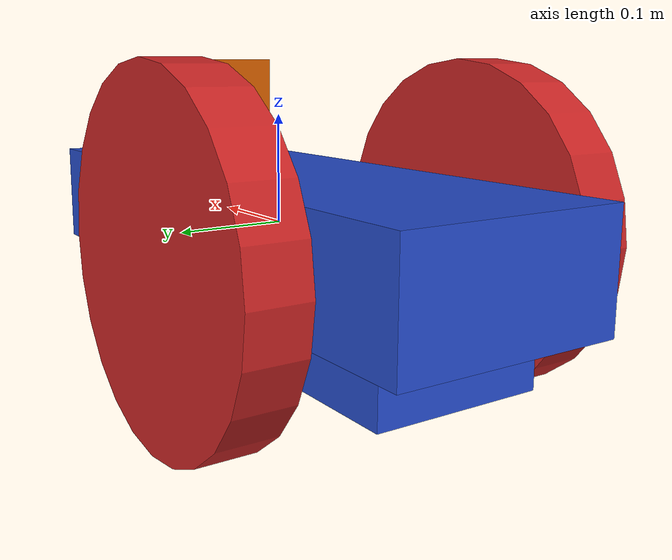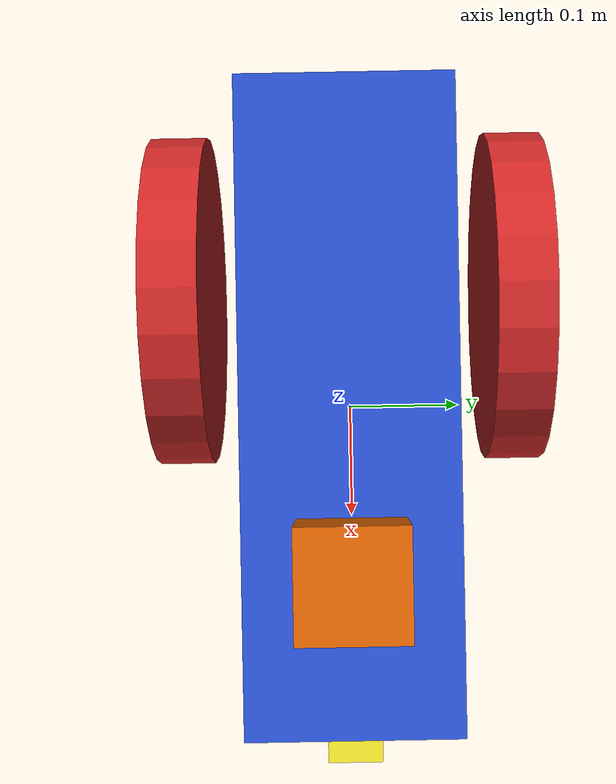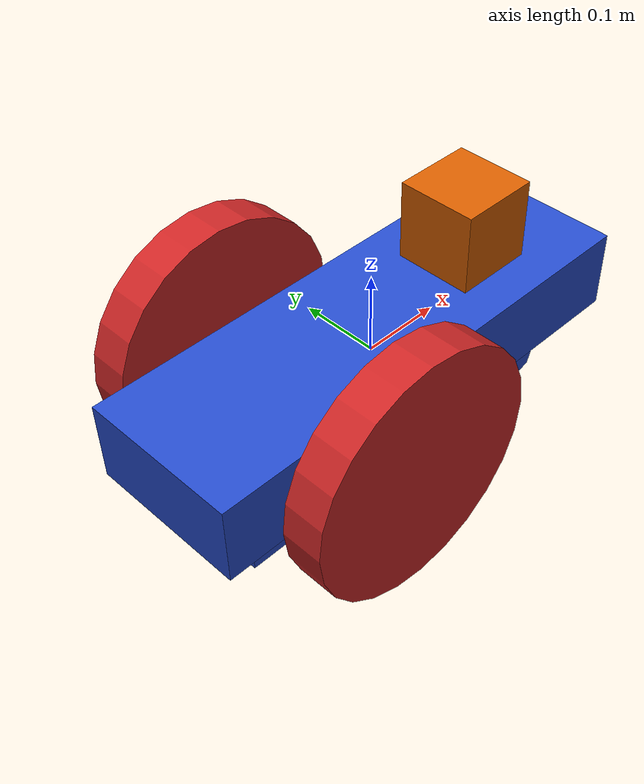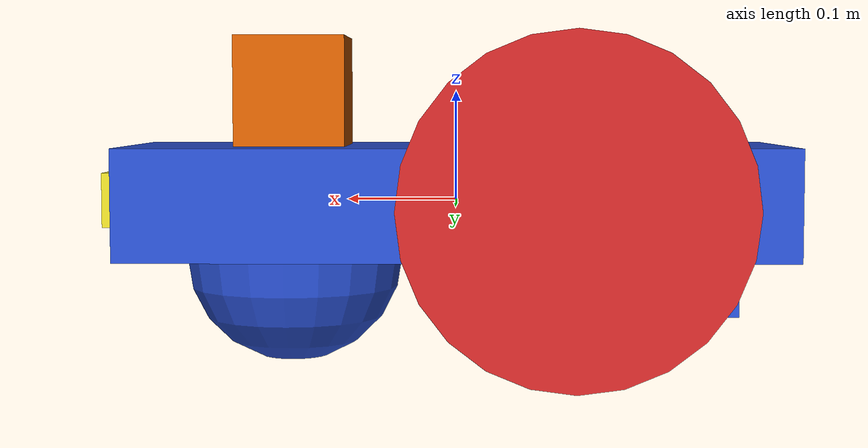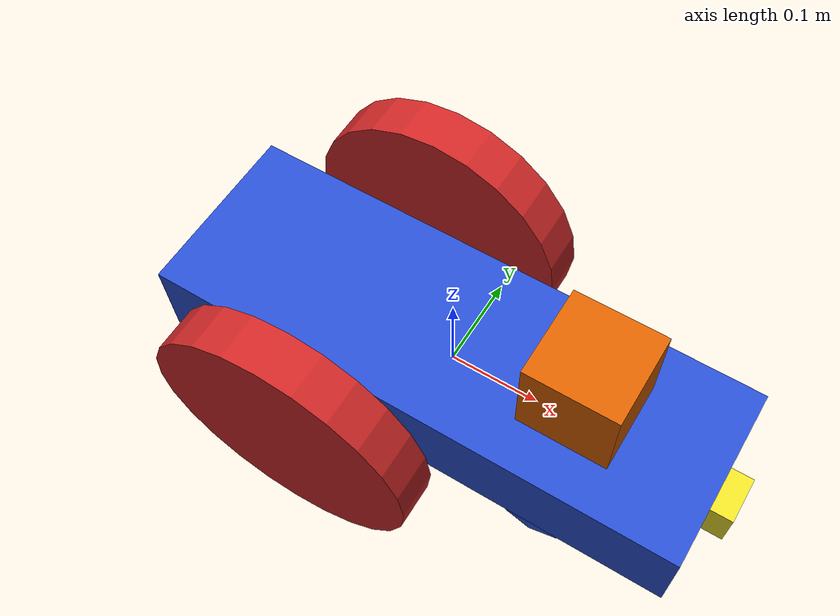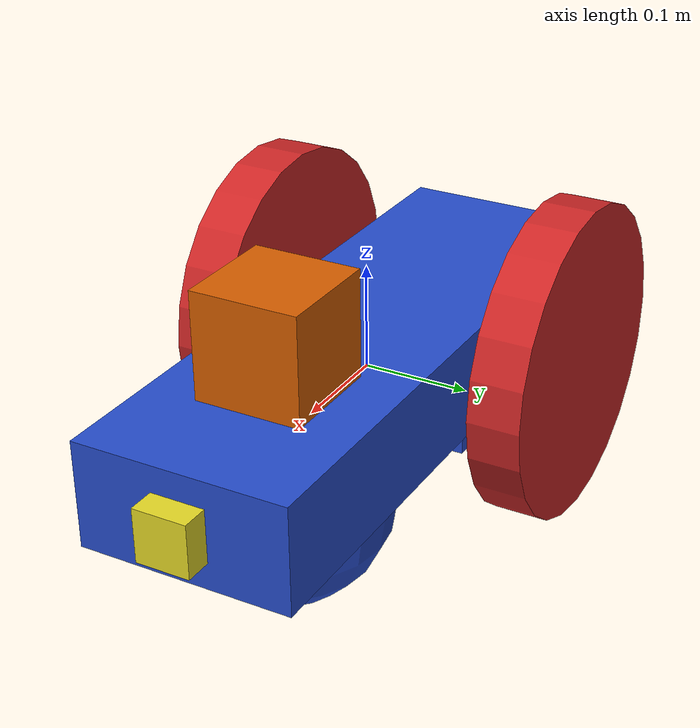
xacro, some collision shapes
<?xml version='1.0'?>

<robot name="my_robot" xmlns:xacro="http://www.ros.org/wiki/xacro">
  <xacro:include filename="$(find my_robot)/urdf/my_robot.gazebo" />
  <link name="robot_footprint"></link>

  <joint name="robot_footprint_joint" type="fixed">
    <origin xyz="0 0 0" rpy="0 0 0" />
    <parent link="robot_footprint"/>
    <child link="chassis" />
  </joint>

  <link name='chassis'>
    <pose>0 0 0.1 0 0 0</pose>

    <inertial>
      <mass value="15.0"/>
      <origin xyz="0.0 0 0" rpy=" 0 0 0"/>
      <inertia
          ixx="0.1" ixy="0" ixz="0"
          iyy="0.1" iyz="0"
          izz="0.1"
      />
    </inertial>

    <collision name='collision'>
      <origin xyz="0 0 0" rpy=" 0 0 0"/>
      <geometry>
        <box size=".6 .2 .1"/>
      </geometry>
    </collision>

    <visual name='chassis_visual'>
      <origin xyz="0 0 0" rpy=" 0 0 0"/>
      <geometry>
        <box size=".6 .2 .1"/>
      </geometry>
    </visual>
   <collision name='back_caster_collision'>
      <origin xyz="-0.15 0 -0.05" rpy=" 0 0 0"/>
      <geometry>
        <box size=".2 .15 .1"/>
      </geometry>
    </collision>

    <visual name='back_caster_visual'>
      <origin xyz="-0.15 0 -0.05" rpy=" 0 0 0"/>
      <geometry>
        <box size=".2 .15 .1"/>
      </geometry>
    </visual>

    <collision name='front_caster_collision'>
      <origin xyz="0.15 0 -0.05" rpy=" 0 0 0"/>
      <geometry>
        <sphere radius="0.1"/>
      </geometry>
    </collision>

    <visual name='front_caster_visual'>
      <origin xyz="0.15 0 -0.05" rpy=" 0 0 0"/>
      <geometry>
        <sphere radius="0.1"/>
      </geometry>
    </visual>
  </link>

<link name='left_wheel'>
    <pose>0 0 0 0 1.5707 1.5707</pose>

    <inertial>
      <mass value="5.0"/>
      <origin xyz="0.0 0 0" rpy=" 1.5707 0 0"/>
      <inertia
          ixx="0.1" ixy="0" ixz="0"
          iyy="0.1" iyz="0"
          izz="0.1"
      />
    </inertial>

    <collision name='collision'>
      <origin xyz="0 0 0" rpy=" 1.5707 0 0"/>
      <geometry>
        <cylinder length="0.05" radius="0.15"/>
      </geometry>
    </collision>

    <visual name='left_wheel_visual'>
      <origin xyz="0 0 0" rpy=" 1.5707 0 0"/>
      <geometry>
        <cylinder length="0.05" radius="0.15"/>
      </geometry>

    </visual>
  </link>

  <link name='right_wheel'>
    <pose>0 0 0 0 1.5707 1.5707</pose>

    <inertial>
      <mass value="5.0"/>
      <origin xyz="0.0 0 0" rpy=" 1.5707 0 0"/>
      <inertia
          ixx="0.1" ixy="0" ixz="0"
          iyy="0.1" iyz="0"
          izz="0.1"
      />
    </inertial>

    <collision name='collision'>
      <origin xyz="0 0 0" rpy=" 1.5707 0 0"/>
      <geometry>
        <cylinder length="0.05" radius="0.15"/>
      </geometry>
    </collision>

    <visual name='right_wheel_visual'>
      <origin xyz="0 0 0" rpy=" 1.5707 0 0"/>
      <geometry>
        <cylinder length="0.05" radius="0.15"/>
      </geometry>

    </visual>
  </link>

  <joint type="continuous" name="left_wheel_hinge">
    <origin xyz="-0.1 0.15 0" rpy="0 0 0"/>
    <child link="left_wheel"/>
    <parent link="chassis"/>
    <axis xyz="0 1 0" rpy="0 0 0"/>
  </joint>

  <joint type="continuous" name="right_wheel_hinge">
    <origin xyz="-0.1 -0.15 0" rpy="0 0 0"/>
    <child link="right_wheel"/>
    <parent link="chassis"/>
    <axis xyz="0 1 0" rpy="0 0 0"/>
  </joint>

  <link name='camera'>
    <pose>0 0 0 0 0 0</pose>

    <inertial>
      <mass value="0.1"/>
      <origin xyz="0.0 0 0" rpy=" 0 0 0"/>
      <inertia
          ixx="1e-6" ixy="0" ixz="0"
          iyy="1e-6" iyz="0"
          izz="1e-6"
      />
    </inertial>

    <collision name='collision'>
      <origin xyz="0 0 0" rpy=" 0 0 0"/>
      <geometry>
        <box size=".05 .05 .05"/>
      </geometry>
    </collision>

    <visual name='camera_visual'>
      <origin xyz="0 0 0" rpy=" 0 0 0"/>
      <geometry>
        <box size=".05 .05 .05"/>
      </geometry>
    </visual>
  </link>

  <joint type="fixed" name="camera_joint">
    <origin xyz="0.3 0 0" rpy="0 0 0"/>
    <child link="camera"/>
    <parent link="chassis"/>
    <axis xyz="0 1 0" rpy="0 0 0"/>
  </joint>

  <link name='hokuyo'>
    <pose>0 0 0 0 0 0</pose>

    <inertial>
      <mass value="1e-5"/>
      <origin xyz="0.0 0 0" rpy=" 0 0 0"/>
      <inertia
          ixx="1e-6" ixy="0" ixz="0"
          iyy="1e-6" iyz="0"
          izz="1e-6"
      />
    </inertial>

    <collision name='collision'>
      <origin xyz="0 0 0" rpy=" 0 0 0"/>
      <geometry>
        <box size=".1 .1 .1"/>
      </geometry>
    </collision>

    <visual name='hokuyo_visual'>
      <origin xyz="0 0 0" rpy=" 0 0 0"/>
      <geometry>
        <mesh filename="package://my_robot/meshes/hokuyo.dae"/>
      </geometry>
    </visual>
  </link>

  <joint type="fixed" name="hokuyo_joint">
    <origin xyz="0.15 0 0.1" rpy="0 0 0"/>
    <child link="hokuyo"/>
    <parent link="chassis"/>
    <axis xyz="0 1 0" rpy="0 0 0"/>
  </joint>
  <gazebo reference="chassis">
    <material>Gazebo/Blue</material>
  </gazebo>
  <gazebo reference="right_wheel">
    <material>Gazebo/Red</material>
  </gazebo>
  <gazebo reference="left_wheel">
    <material>Gazebo/Red</material>
  </gazebo>
  <gazebo reference="camera">
    <material>Gazebo/Yellow</material>
  </gazebo>
</robot>
